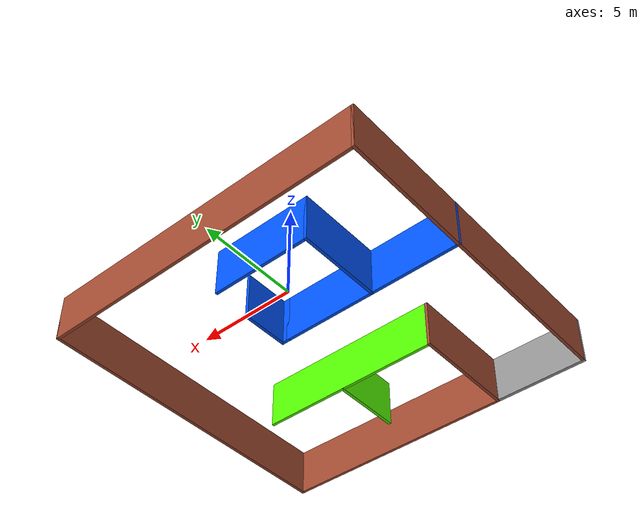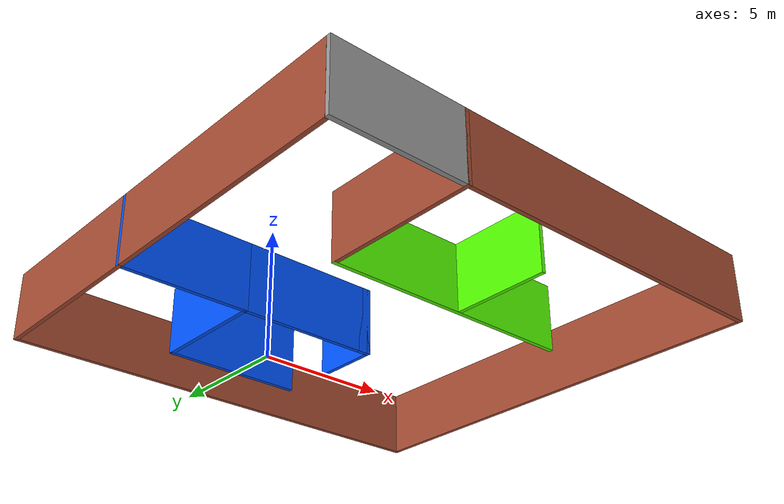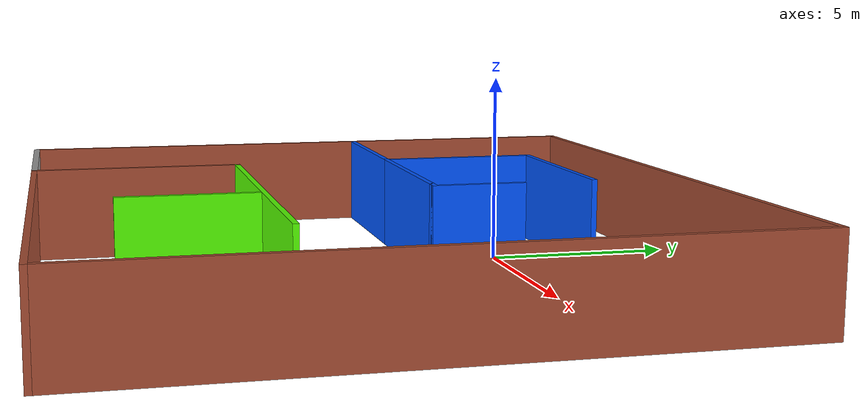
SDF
<?xml version='1.0'?>
<sdf version='1.6'>
  <model name='my_building'>
    <pose frame=''>1.385 -3.995 0 0 -0 0</pose>
    <link name='Door_1'>
      <collision name='Door_1_Collision'>
        <geometry>
          <box>
            <size>4.8 0.17 2.5</size>
          </box>
        </geometry>
        <pose frame=''>0 0 1.25 0 -0 0</pose>
      </collision>
      <visual name='Door_1_Visual'>
        <pose frame=''>0 0 1.25 0 -0 0</pose>
        <geometry>
          <box>
            <size>4.8 0.17 2.5</size>
          </box>
        </geometry>
        <material>
          <script>
            <uri>file://media/materials/scripts/gazebo.material</uri>
            <name>Gazebo/Grey</name>
          </script>
        </material>
      </visual>
      <pose frame=''>-6.34787 -8.415 0 0 -0 0</pose>
    </link>
    <link name='Wall_13'>
      <collision name='Wall_13_Collision'>
        <geometry>
          <box>
            <size>4.75 0.15 2.5</size>
          </box>
        </geometry>
        <pose frame=''>0 0 1.25 0 -0 0</pose>
      </collision>
      <visual name='Wall_13_Visual'>
        <pose frame=''>0 0 1.25 0 -0 0</pose>
        <geometry>
          <box>
            <size>4.75 0.15 2.5</size>
          </box>
        </geometry>
        <material>
          <script>
            <uri>file://media/materials/scripts/gazebo.material</uri>
            <name>Gazebo/Grey</name>
          </script>
          <ambient>0 0.333333 1 1</ambient>
        </material>
        <meta>
          <layer>0</layer>
        </meta>
      </visual>
      <pose frame=''>-6.375 1.575 0 0 -0 3.14159</pose>
    </link>
    <link name='Wall_14'>
      <collision name='Wall_14_Collision'>
        <geometry>
          <box>
            <size>7 0.15 2.5</size>
          </box>
        </geometry>
        <pose frame=''>0 0 1.25 0 -0 0</pose>
      </collision>
      <visual name='Wall_14_Visual'>
        <pose frame=''>0 0 1.25 0 -0 0</pose>
        <geometry>
          <box>
            <size>7 0.15 2.5</size>
          </box>
        </geometry>
        <material>
          <script>
            <uri>file://media/materials/scripts/gazebo.material</uri>
            <name>Gazebo/Bricks</name>
          </script>
          <ambient>1 1 1 1</ambient>
        </material>
        <meta>
          <layer>0</layer>
        </meta>
      </visual>
      <pose frame=''>-8.675 5 0 0 -0 1.5708</pose>
    </link>
    <link name='Wall_15'>
      <collision name='Wall_15_Collision'>
        <geometry>
          <box>
            <size>17.5 0.15 2.5</size>
          </box>
        </geometry>
        <pose frame=''>0 0 1.25 0 -0 0</pose>
      </collision>
      <visual name='Wall_15_Visual'>
        <pose frame=''>0 0 1.25 0 -0 0</pose>
        <geometry>
          <box>
            <size>17.5 0.15 2.5</size>
          </box>
        </geometry>
        <material>
          <script>
            <uri>file://media/materials/scripts/gazebo.material</uri>
            <name>Gazebo/Bricks</name>
          </script>
          <ambient>1 1 1 1</ambient>
        </material>
        <meta>
          <layer>0</layer>
        </meta>
      </visual>
      <pose frame=''>0 8.425 0 0 -0 0</pose>
    </link>
    <link name='Wall_21'>
      <collision name='Wall_21_Collision'>
        <geometry>
          <box>
            <size>17 0.15 2.5</size>
          </box>
        </geometry>
        <pose frame=''>0 0 1.25 0 -0 0</pose>
      </collision>
      <visual name='Wall_21_Visual'>
        <pose frame=''>0 0 1.25 0 -0 0</pose>
        <geometry>
          <box>
            <size>17 0.15 2.5</size>
          </box>
        </geometry>
        <material>
          <script>
            <uri>file://media/materials/scripts/gazebo.material</uri>
            <name>Gazebo/Bricks</name>
          </script>
          <ambient>1 1 1 1</ambient>
        </material>
        <meta>
          <layer>0</layer>
        </meta>
      </visual>
      <pose frame=''>8.675 0 0 0 0 -1.5708</pose>
    </link>
    <link name='Wall_24'>
      <collision name='Wall_24_Collision'>
        <geometry>
          <box>
            <size>12.75 0.15 2.5</size>
          </box>
        </geometry>
        <pose frame=''>0 0 1.25 0 -0 0</pose>
      </collision>
      <visual name='Wall_24_Visual'>
        <pose frame=''>0 0 1.25 0 -0 0</pose>
        <geometry>
          <box>
            <size>12.75 0.15 2.5</size>
          </box>
        </geometry>
        <material>
          <script>
            <uri>file://media/materials/scripts/gazebo.material</uri>
            <name>Gazebo/Bricks</name>
          </script>
          <ambient>1 1 1 1</ambient>
        </material>
        <meta>
          <layer>0</layer>
        </meta>
      </visual>
      <pose frame=''>2.375 -8.425 0 0 -0 3.14159</pose>
    </link>
    <link name='Wall_25'>
      <collision name='Wall_25_Collision'>
        <geometry>
          <box>
            <size>5.75 0.15 2.5</size>
          </box>
        </geometry>
        <pose frame=''>0 0 1.25 0 -0 0</pose>
      </collision>
      <visual name='Wall_25_Visual'>
        <pose frame=''>0 0 1.25 0 -0 0</pose>
        <geometry>
          <box>
            <size>5.75 0.15 2.5</size>
          </box>
        </geometry>
        <material>
          <script>
            <uri>file://media/materials/scripts/gazebo.material</uri>
            <name>Gazebo/Bricks</name>
          </script>
          <ambient>1 1 1 1</ambient>
        </material>
        <meta>
          <layer>0</layer>
        </meta>
      </visual>
      <pose frame=''>-3.925 -5.625 0 0 -0 1.5708</pose>
    </link>
    <link name='Wall_26'>
      <collision name='Wall_26_Collision'>
        <geometry>
          <box>
            <size>9.75 0.15 2.5</size>
          </box>
        </geometry>
        <pose frame=''>0 0 1.25 0 -0 0</pose>
      </collision>
      <visual name='Wall_26_Visual'>
        <pose frame=''>0 0 1.25 0 -0 0</pose>
        <geometry>
          <box>
            <size>9.75 0.15 2.5</size>
          </box>
        </geometry>
        <material>
          <script>
            <uri>file://media/materials/scripts/gazebo.material</uri>
            <name>Gazebo/Grey</name>
          </script>
          <ambient>0.333333 1 0 1</ambient>
        </material>
        <meta>
          <layer>0</layer>
        </meta>
      </visual>
      <pose frame=''>0.875 -2.825 0 0 -0 0</pose>
    </link>
    <link name='Wall_30'>
      <collision name='Wall_30_Collision'>
        <geometry>
          <box>
            <size>4.5 0.15 2.5</size>
          </box>
        </geometry>
        <pose frame=''>0 0 1.25 0 -0 0</pose>
      </collision>
      <visual name='Wall_30_Visual'>
        <pose frame=''>0 0 1.25 0 -0 0</pose>
        <geometry>
          <box>
            <size>4.5 0.15 2.5</size>
          </box>
        </geometry>
        <material>
          <script>
            <uri>file://media/materials/scripts/gazebo.material</uri>
            <name>Gazebo/Grey</name>
          </script>
          <ambient>0 0.333333 1 1</ambient>
        </material>
        <meta>
          <layer>0</layer>
        </meta>
      </visual>
      <pose frame=''>-4.075 3.75 0 0 -0 1.5708</pose>
    </link>
    <link name='Wall_31'>
      <collision name='Wall_31_Collision'>
        <geometry>
          <box>
            <size>5.25 0.15 2.5</size>
          </box>
        </geometry>
        <pose frame=''>0 0 1.25 0 -0 0</pose>
      </collision>
      <visual name='Wall_31_Visual'>
        <pose frame=''>0 0 1.25 0 -0 0</pose>
        <geometry>
          <box>
            <size>5.25 0.15 2.5</size>
          </box>
        </geometry>
        <material>
          <script>
            <uri>file://media/materials/scripts/gazebo.material</uri>
            <name>Gazebo/Grey</name>
          </script>
          <ambient>0 0.333333 1 1</ambient>
        </material>
        <meta>
          <layer>0</layer>
        </meta>
      </visual>
      <pose frame=''>-1.525 5.925 0 0 -0 0</pose>
    </link>
    <link name='Wall_33'>
      <collision name='Wall_33_Collision'>
        <geometry>
          <box>
            <size>5 0.15 2.5</size>
          </box>
        </geometry>
        <pose frame=''>0 0 1.25 0 -0 0</pose>
      </collision>
      <visual name='Wall_33_Visual'>
        <pose frame=''>0 0 1.25 0 -0 0</pose>
        <geometry>
          <box>
            <size>5 0.15 2.5</size>
          </box>
        </geometry>
        <material>
          <script>
            <uri>file://media/materials/scripts/gazebo.material</uri>
            <name>Gazebo/Grey</name>
          </script>
          <ambient>0 0.333333 1 1</ambient>
        </material>
        <meta>
          <layer>0</layer>
        </meta>
      </visual>
      <pose frame=''>-1.65 1.575 0 0 -0 0</pose>
    </link>
    <link name='Wall_34'>
      <collision name='Wall_34_Collision'>
        <geometry>
          <box>
            <size>0.5 0.15 2.5</size>
          </box>
        </geometry>
        <pose frame=''>0 0 1.25 0 -0 0</pose>
      </collision>
      <visual name='Wall_34_Visual'>
        <pose frame=''>0 0 1.25 0 -0 0</pose>
        <geometry>
          <box>
            <size>0.5 0.15 2.5</size>
          </box>
        </geometry>
        <material>
          <script>
            <uri>file://media/materials/scripts/gazebo.material</uri>
            <name>Gazebo/Grey</name>
          </script>
          <ambient>0 0.333333 1 1</ambient>
        </material>
        <meta>
          <layer>0</layer>
        </meta>
      </visual>
      <pose frame=''>0.95 1.575 0 0 -0 0</pose>
    </link>
    <link name='Wall_35'>
      <collision name='Wall_35_Collision'>
        <geometry>
          <box>
            <size>2.5 0.15 2.5</size>
          </box>
        </geometry>
        <pose frame=''>0 0 1.25 0 -0 0</pose>
      </collision>
      <visual name='Wall_35_Visual'>
        <pose frame=''>0 0 1.25 0 -0 0</pose>
        <geometry>
          <box>
            <size>2.5 0.15 2.5</size>
          </box>
        </geometry>
        <material>
          <script>
            <uri>file://media/materials/scripts/gazebo.material</uri>
            <name>Gazebo/Grey</name>
          </script>
          <ambient>0 0.333333 1 1</ambient>
        </material>
        <meta>
          <layer>0</layer>
        </meta>
      </visual>
      <pose frame=''>1.125 2.75 0 0 -0 1.5708</pose>
    </link>
    <link name='Wall_37'>
      <collision name='Wall_37_Collision'>
        <geometry>
          <box>
            <size>10 0.15 2.5</size>
          </box>
        </geometry>
        <pose frame=''>0 0 1.25 0 -0 0</pose>
      </collision>
      <visual name='Wall_37_Visual'>
        <pose frame=''>0 0 1.25 0 -0 0</pose>
        <geometry>
          <box>
            <size>10 0.15 2.5</size>
          </box>
        </geometry>
        <material>
          <script>
            <uri>file://media/materials/scripts/gazebo.material</uri>
            <name>Gazebo/Bricks</name>
          </script>
          <ambient>1 1 1 1</ambient>
        </material>
        <meta>
          <layer>0</layer>
        </meta>
      </visual>
      <pose frame=''>-8.675 -3.35 0 0 0 -1.5708</pose>
    </link>
    <link name='Wall_39'>
      <collision name='Wall_39_Collision'>
        <geometry>
          <box>
            <size>3.75 0.15 2.5</size>
          </box>
        </geometry>
        <pose frame=''>0 0 1.25 0 -0 0</pose>
      </collision>
      <visual name='Wall_39_Visual'>
        <pose frame=''>0 0 1.25 0 -0 0</pose>
        <geometry>
          <box>
            <size>3.75 0.15 2.5</size>
          </box>
        </geometry>
        <material>
          <script>
            <uri>file://media/materials/scripts/gazebo.material</uri>
            <name>Gazebo/Grey</name>
          </script>
          <ambient>0.333333 1 0 1</ambient>
        </material>
        <meta>
          <layer>0</layer>
        </meta>
      </visual>
      <pose frame=''>1.24076 -4.62607 0 0 0 -1.5708</pose>
    </link>
    <static>1</static>
  </model>
</sdf>
